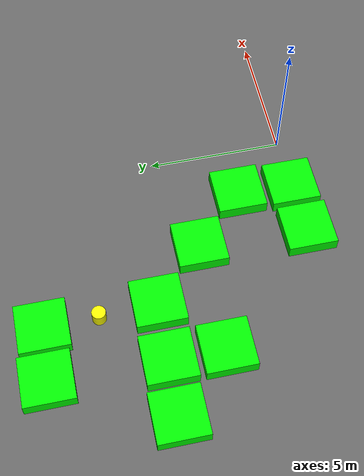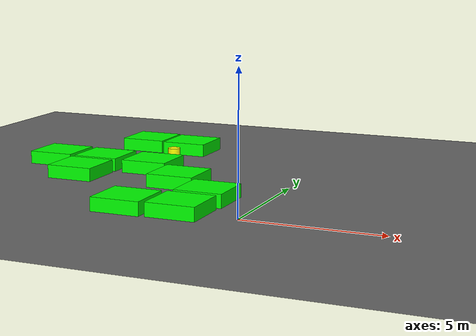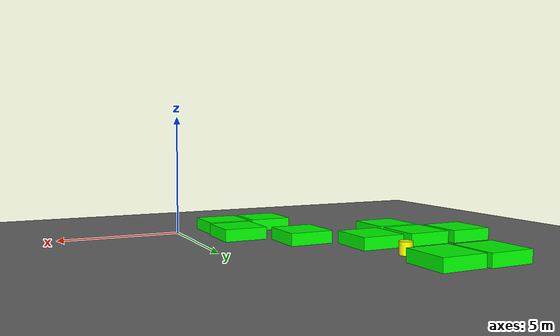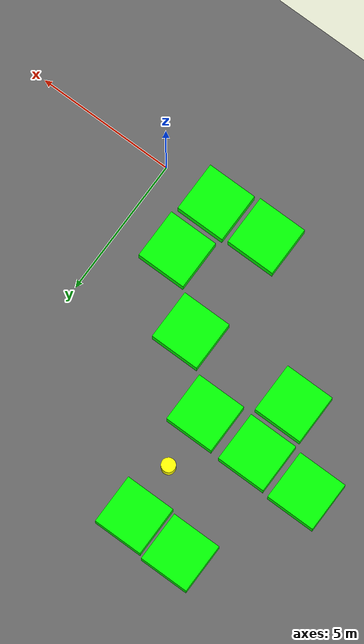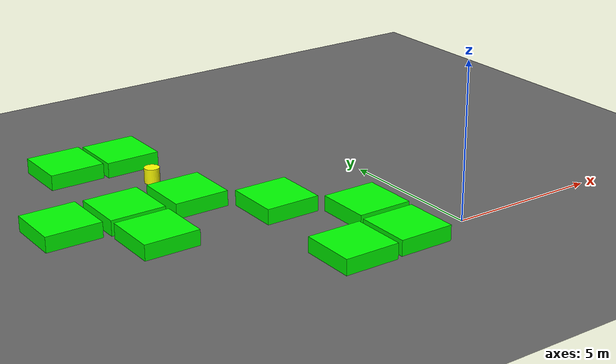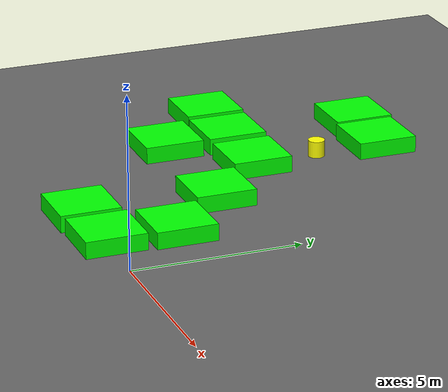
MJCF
<mujoco model="lvl5_corridor_obs10_dmid_depth2_seed83">
    <compiler angle="degree" coordinate="local" inertiafromgeom="true"/>
    <option integrator="RK4" timestep="0.01"/>

    <asset>
        <texture builtin="gradient" height="100" rgb1="0.6 0.8 1" rgb2="0 0 0" type="skybox" width="100"/>
        <texture name="floor_texture" type="2d" builtin="checker" width="100" height="100" rgb1="0 0 0" rgb2="0.8 0.8 0.8"/>
        <material name="MatPlane" reflectance="0.5" shininess="1" specular="1" texrepeat="10 10" texture="floor_texture"/>
    </asset>

    <!-- Excluding the contact between the agent and the goal, and the agent and the floor -->
    <contact>
        <exclude body1="agent" body2="goal"/>
        <exclude body1 = "agent" body2 = "floor"/>
    </contact>

    <extension>
        <plugin plugin = "mujoco.pid">
            <instance name = "pid1">
                <config key="kp" value="2"/>
                <config key="ki" value="0"/>
                <config key="kd" value="55"/>
            </instance>
        </plugin>
    </extension>

    <worldbody>
        <light cutoff="100" diffuse="1 1 1" dir="-0 0 -1.3" directional="true" exponent="1" pos="0 0 1.3" specular=".1 .1 .1"/>
        <body name="floor" pos="0 0 0">
            <geom name="floor_geom" type="plane" size="20 20 0.1" material="MatPlane"/>
        </body>

                <body name="goal" pos="0.0000 0.0000 0">
            <geom name="goal_geom" type="plane" size="0.5 0.5 1" pos="0 0 0" rgba="1 0 0 1"/>
        </body>

                <body name="agent" pos="-6.0000 8.0000 0.250">
            <joint name="j1" type="slide" axis ="1 0 0 "/>
            <joint name="j2" type="slide" axis ="0 1 0 "/>
            <geom name="agent_geom" type="cylinder" size="0.25 0.25 0.250" rgba="1 1 0 1"/>
        </body>

        <body name="obstacle1" pos="-8.0008 10.0714 0.250">  <geom name="obstacle1_geom" type="box" size="0.9000 0.9000 0.250" rgba="0 1 0 1"/></body>
        <body name="obstacle2" pos="-6.0823 9.9757 0.250">  <geom name="obstacle2_geom" type="box" size="0.9000 0.9000 0.250" rgba="0 1 0 1"/></body>
        <body name="obstacle3" pos="-10.0902 6.0300 0.250">  <geom name="obstacle3_geom" type="box" size="0.9000 0.9000 0.250" rgba="0 1 0 1"/></body>
        <body name="obstacle4" pos="-8.0622 5.9618 0.250">  <geom name="obstacle4_geom" type="box" size="0.9000 0.9000 0.250" rgba="0 1 0 1"/></body>
        <body name="obstacle5" pos="-5.9363 5.9109 0.250">  <geom name="obstacle5_geom" type="box" size="0.9000 0.9000 0.250" rgba="0 1 0 1"/></body>
        <body name="obstacle6" pos="-8.0693 3.9603 0.250">  <geom name="obstacle6_geom" type="box" size="0.9000 0.9000 0.250" rgba="0 1 0 1"/></body>
        <body name="obstacle7" pos="-3.9377 3.9951 0.250">  <geom name="obstacle7_geom" type="box" size="0.9000 0.9000 0.250" rgba="0 1 0 1"/></body>
        <body name="obstacle8" pos="-1.9748 2.0802 0.250">  <geom name="obstacle8_geom" type="box" size="0.9000 0.9000 0.250" rgba="0 1 0 1"/></body>
        <body name="obstacle9" pos="-4.0540 -0.0108 0.250">  <geom name="obstacle9_geom" type="box" size="0.9000 0.9000 0.250" rgba="0 1 0 1"/></body>
        <body name="obstacle10" pos="-2.0666 0.0563 0.250">  <geom name="obstacle10_geom" type="box" size="0.9000 0.9000 0.250" rgba="0 1 0 1"/></body>

    </worldbody>

    <sensor>
<!-- SENSORS -->

        <distance name="dist1" geom1="agent_geom" geom2="obstacle1_geom" cutoff="1.5"/>
        <distance name="dist2" geom1="agent_geom" geom2="obstacle2_geom" cutoff="1.5"/>
        <distance name="dist3" geom1="agent_geom" geom2="obstacle3_geom" cutoff="1.5"/>
        <distance name="dist4" geom1="agent_geom" geom2="obstacle4_geom" cutoff="1.5"/>
        <distance name="dist5" geom1="agent_geom" geom2="obstacle5_geom" cutoff="1.5"/>
        <distance name="dist6" geom1="agent_geom" geom2="obstacle6_geom" cutoff="1.5"/>
        <distance name="dist7" geom1="agent_geom" geom2="obstacle7_geom" cutoff="1.5"/>
        <distance name="dist8" geom1="agent_geom" geom2="obstacle8_geom" cutoff="1.5"/>
        <distance name="dist9" geom1="agent_geom" geom2="obstacle9_geom" cutoff="1.5"/>
        <distance name="dist10" geom1="agent_geom" geom2="obstacle10_geom" cutoff="1.5"/>
</sensor>

    <actuator>
        <plugin joint="j1" plugin="mujoco.pid" instance="pid1" />
        <plugin joint="j2" plugin="mujoco.pid" instance="pid1"/>
    </actuator>
</mujoco>
